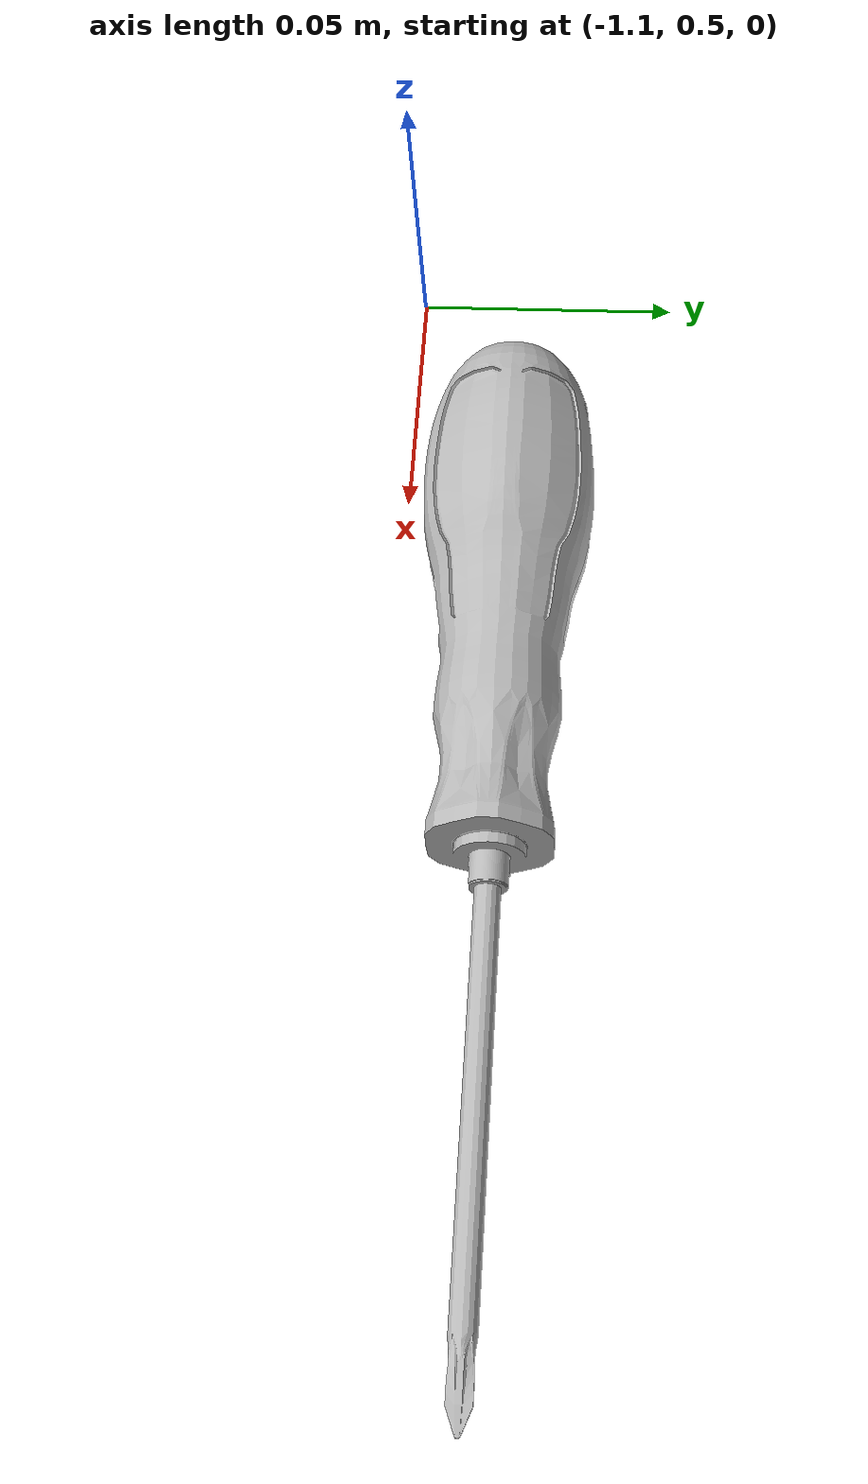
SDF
<sdf version='1.4'>
  <model name='screwdriver4'>
    <link name='body'>
      <visual name='visual'>
        <geometry>
          <mesh>
            <uri>/home/daniel/FETCH_CORE/examples/toolbox/screwdriver4.dae</uri>
             <scale>1.3207509790066632 1.3207509790066632 1.3207509790066632</scale>
          </mesh>
        </geometry>
      </visual>
      <collision name='screwdriver4'>
        <pose>0.01469665651889664 -8.386768716692495e-05 -3.3018774475139916e-06 0 0 0</pose>
        <geometry>
          <box>
            <size>0.2 0.032333304717062125 0.03445443078934682</size>
          </box>
        </geometry>
        <surface>
          <friction>
            <ode>
              <mu>50</mu>
              <mu2>100</mu2>
            </ode>
          </friction>
          <bounce/>
          <contact>
            <ode/>
          </contact>
        </surface>
        <max_contacts>10</max_contacts>
      </collision>
      <velocity_decay>
        <linear>0</linear>
        <angular>0</angular>
      </velocity_decay>
      <self_collide>0</self_collide>
      <inertial>
        <inertia>
          <ixx>7.6e-07</ixx>
          <ixy>0</ixy>
          <ixz>0</ixz>
          <iyy>1.052e-05</iyy>
          <iyz>0</iyz>
          <izz>1.107e-05</izz>
        </inertia>
        <mass>0.0125</mass>
      </inertial>
      <kinematic>0</kinematic>
      <gravity>1</gravity>
    </link>
    <pose>-1 0.519198 0 0 -0 0</pose>
    <static>0</static>
    </model>
</sdf>
